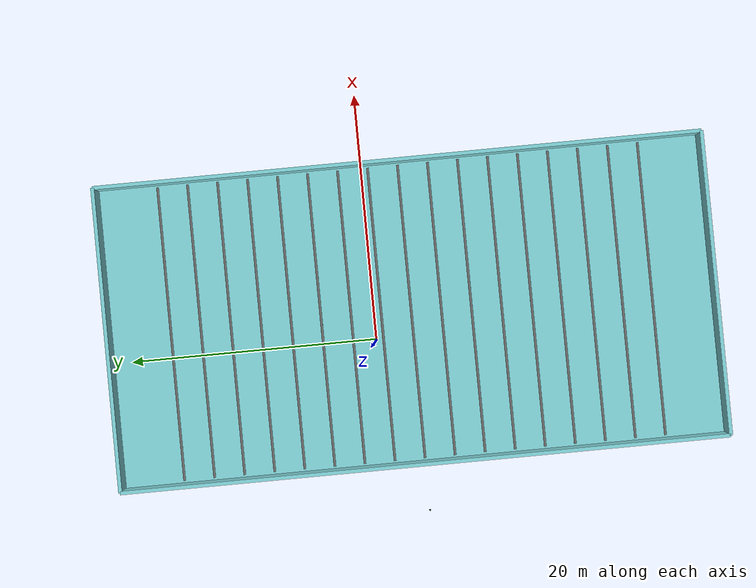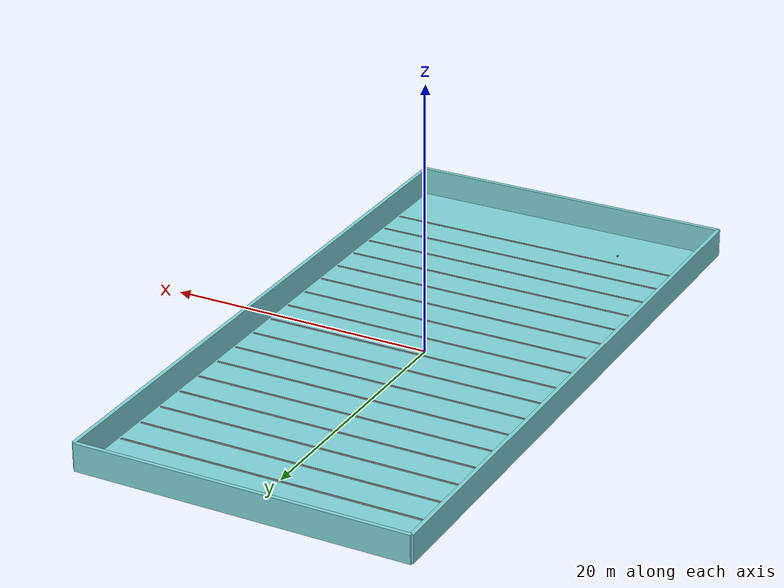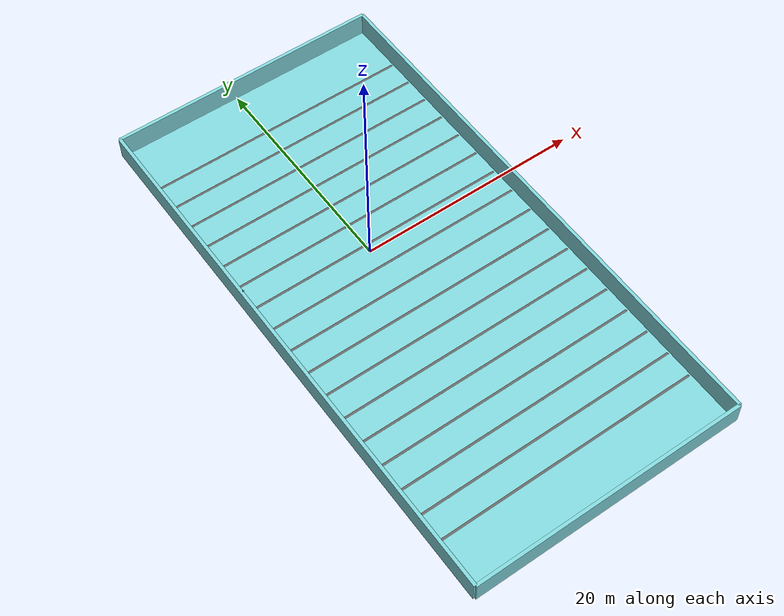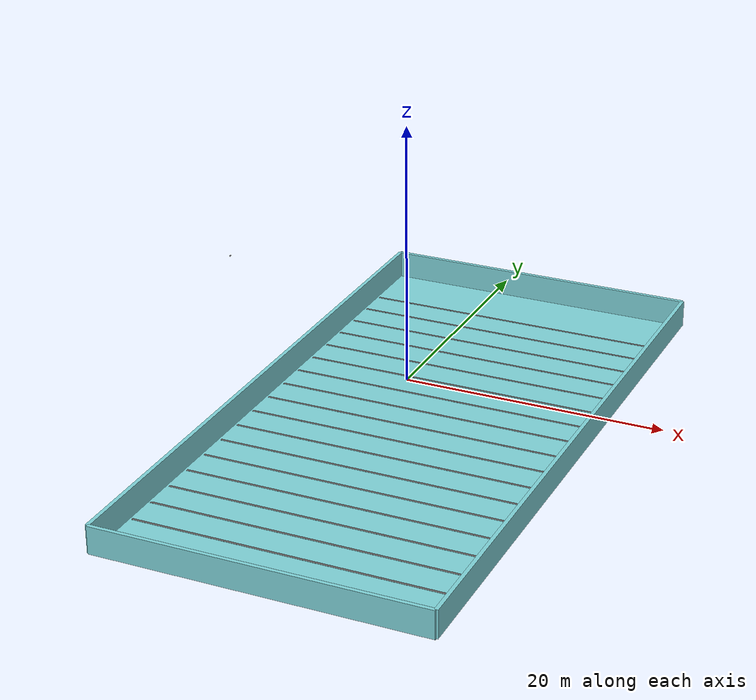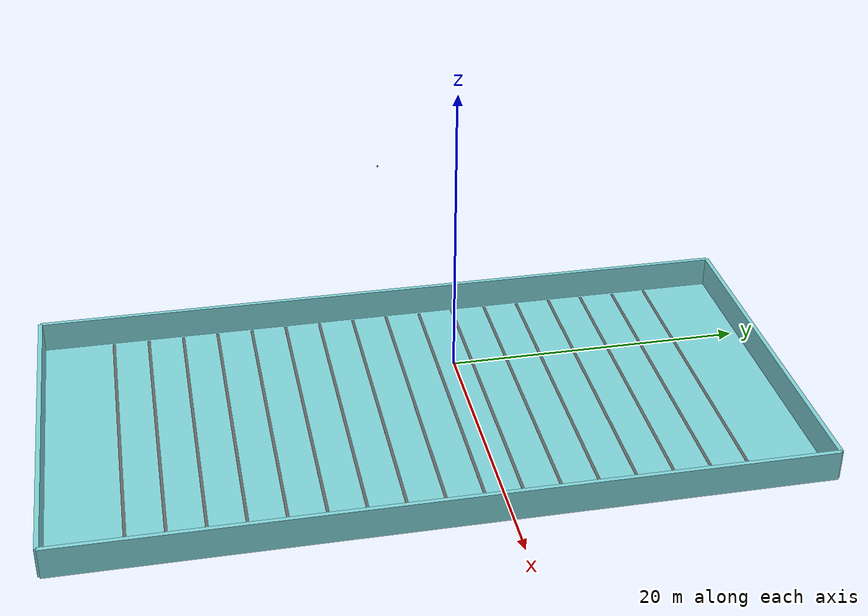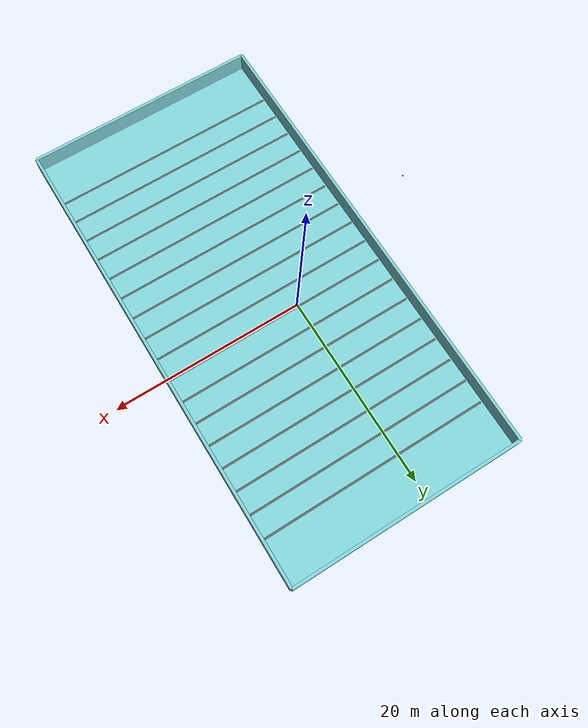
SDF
<sdf version="1.7">
 <world name="default">
  <plugin filename="gz-sim-air-pressure-system" name="gz::sim::systems::AirPressure"/>
  <plugin filename="gz-sim-imu-system" name="gz::sim::systems::Imu"/>
  <plugin filename="gz-sim-buoyancy-system" name="gz::sim::systems::Buoyancy">
   <graded_buoyancy>
    <default_density>1000</default_density>
    <density_change><above_depth>0</above_depth><density>1</density></density_change>
   </graded_buoyancy>
  </plugin>
  <plugin filename="gz-sim-physics-system" name="gz::sim::systems::Physics"/>
  <plugin filename="gz-sim-sensors-system" name="gz::sim::systems::Sensors">
   <render_engine>ogre2</render_engine>
  </plugin>
  <plugin filename="gz-sim-user-commands-system" name="gz::sim::systems::UserCommands"/>
  <plugin filename="gz-sim-scene-broadcaster-system" name="gz::sim::systems::SceneBroadcaster"/>
  <light name="sun" type="directional">
   <cast_shadows>0</cast_shadows>
   <pose>0 0 10 0 -0 0</pose>
   <diffuse>0.8 0.8 0.8 1</diffuse>
   <specular>0.2 0.2 0.2 1</specular>
   <attenuation>
    <range>1000</range>
    <constant>0.9</constant>
    <linear>0.01</linear>
    <quadratic>0.001</quadratic>
   </attenuation>
   <direction>-0.5 0.1 -0.9</direction>
   <spot><inner_angle>0</inner_angle><outer_angle>0</outer_angle><falloff>0</falloff></spot>
  </light>
  <light name="user_point_light_0" type="point">
   <pose>-6 -3.5 1 0 -0 0</pose>
   <diffuse>0.5 0.5 0.5 1</diffuse>
   <specular>0.1 0.1 0.1 1</specular>
   <attenuation>
    <range>20</range>
    <constant>0.5</constant>
    <linear>0.01</linear>
    <quadratic>0.001</quadratic>
   </attenuation>
   <cast_shadows>0</cast_shadows>
   <direction>0 0 -1</direction>
  </light>
  <gravity>0 0 -9.8</gravity>
  <magnetic_field>6e-06 2.3e-05 -4.2e-05</magnetic_field>
  <atmosphere type="adiabatic"/>
  <physics type="ode">
   <max_step_size>0.001</max_step_size>
   <real_time_factor>1</real_time_factor>
   <real_time_update_rate>1000</real_time_update_rate>
  </physics>
  <scene><ambient>0.4 0.4 0.4 1</ambient><background>0.7 0.7 0.7 1</background><shadows>1</shadows></scene>
  <spherical_coordinates>
   <surface_model>EARTH_WGS84</surface_model>
   <latitude_deg>0</latitude_deg>
   <longitude_deg>0</longitude_deg>
   <elevation>0</elevation>
   <heading_deg>0</heading_deg>
  </spherical_coordinates>
  <model name="pool_floor">
   <static>1</static>
   <pose>2 -3 0 0 0 0</pose>
   <link name="pool_floor_link">
    <collision name="pool_floor_collision">
     <geometry><box><size>25 50 0.1</size></box></geometry>
     <pose>0 0 -2.18 0 0 0</pose>
     <surface><friction><ode><mu>0.5</mu><mu2>0.5</mu2></ode></friction></surface>
    </collision>
    <visual name="pool_floor_visual">
     <geometry><box><size>25 50 0.1</size></box></geometry>
     <pose>0 0 -2.18 0 0 0</pose>
     <material>
      <ambient>0.5 0.83 0.85 1</ambient>
      <diffuse>0.5 0.83 0.85 1</diffuse>
      <specular>0.1 0.1 0.1 1</specular>
     </material>
    </visual>
   </link>
  </model>
  <model name="wall_north">
   <static>1</static>
   <pose>2 22 -1.065 0 0 0</pose>
   <link name="wall_north_link">
    <collision name="wall_north_collision">
     <geometry><box><size>25 0.3 2.13</size></box></geometry>
     <surface><friction><ode><mu>0.5</mu><mu2>0.5</mu2></ode></friction></surface>
    </collision>
    <visual name="wall_north_visual">
     <geometry><box><size>25 0.3 2.13</size></box></geometry>
     <material>
      <ambient>0.5 0.83 0.85 1</ambient>
      <diffuse>0.5 0.83 0.85 1</diffuse>
      <specular>0.1 0.1 0.1 1</specular>
     </material>
    </visual>
   </link>
  </model>
  <model name="wall_south">
   <static>1</static>
   <pose>2 -28 -1.065 0 0 0</pose>
   <link name="wall_south_link">
    <collision name="wall_south_collision">
     <geometry><box><size>25 0.3 2.13</size></box></geometry>
     <surface><friction><ode><mu>0.5</mu><mu2>0.5</mu2></ode></friction></surface>
    </collision>
    <visual name="wall_south_visual">
     <geometry><box><size>25 0.3 2.13</size></box></geometry>
     <material>
      <ambient>0.5 0.83 0.85 1</ambient>
      <diffuse>0.5 0.83 0.85 1</diffuse>
      <specular>0.1 0.1 0.1 1</specular>
     </material>
    </visual>
   </link>
  </model>
  <model name="wall_west">
   <static>1</static>
   <pose>-10.5 -3 -1.065 0 0 0</pose>
   <link name="wall_west_link">
    <collision name="wall_west_collision">
     <geometry><box><size>0.3 50 2.13</size></box></geometry>
     <surface><friction><ode><mu>0.5</mu><mu2>0.5</mu2></ode></friction></surface>
    </collision>
    <visual name="wall_west_visual">
     <geometry><box><size>0.3 50 2.13</size></box></geometry>
     <material>
      <ambient>0.5 0.83 0.85 1</ambient>
      <diffuse>0.5 0.83 0.85 1</diffuse>
      <specular>0.1 0.1 0.1 1</specular>
     </material>
    </visual>
   </link>
  </model>
  <model name="wall_east">
   <static>1</static>
   <pose>14.5 -3 -1.065 0 0 0</pose>
   <link name="wall_east_link">
    <collision name="wall_east_collision">
     <geometry><box><size>0.3 50 2.13</size></box></geometry>
     <surface><friction><ode><mu>0.5</mu><mu2>0.5</mu2></ode></friction></surface>
    </collision>
    <visual name="wall_east_visual">
     <geometry><box><size>0.3 50 2.13</size></box></geometry>
     <material>
      <ambient>0.5 0.83 0.85 1</ambient>
      <diffuse>0.5 0.83 0.85 1</diffuse>
      <specular>0.1 0.1 0.1 1</specular>
     </material>
    </visual>
   </link>
  </model>
  <model name="lane_marker_1">
   <static>1</static>
   <pose>2 7 -2.134 0 0 0</pose>
   <link name="lane_marker_1_link">
    <visual name="lane_marker_1_visual">
     <geometry><box><size>24.4 0.2 0.01</size></box></geometry>
     <material>
      <ambient>0.4 0.4 0.4 1</ambient>
      <diffuse>0.4 0.4 0.4 1</diffuse>
      <specular>0.1 0.1 0.1 1</specular>
     </material>
    </visual>
   </link>
  </model>
  <model name="lane_marker_2">
   <static>1</static>
   <pose>2 4.5 -2.134 0 0 0</pose>
   <link name="lane_marker_2_link">
    <visual name="lane_marker_2_visual">
     <geometry><box><size>24.4 0.2 0.01</size></box></geometry>
     <material>
      <ambient>0.4 0.4 0.4 1</ambient>
      <diffuse>0.4 0.4 0.4 1</diffuse>
      <specular>0.1 0.1 0.1 1</specular>
     </material>
    </visual>
   </link>
  </model>
  <model name="lane_marker_3">
   <static>1</static>
   <pose>2 2 -2.134 0 0 0</pose>
   <link name="lane_marker_3_link">
    <visual name="lane_marker_3_visual">
     <geometry><box><size>24.4 0.2 0.01</size></box></geometry>
     <material>
      <ambient>0.4 0.4 0.4 1</ambient>
      <diffuse>0.4 0.4 0.4 1</diffuse>
      <specular>0.1 0.1 0.1 1</specular>
     </material>
    </visual>
   </link>
  </model>
  <model name="lane_marker_4">
   <static>1</static>
   <pose>2 -0.5 -2.134 0 0 0</pose>
   <link name="lane_marker_4_link">
    <visual name="lane_marker_4_visual">
     <geometry><box><size>24.4 0.2 0.01</size></box></geometry>
     <material>
      <ambient>0.4 0.4 0.4 1</ambient>
      <diffuse>0.4 0.4 0.4 1</diffuse>
      <specular>0.1 0.1 0.1 1</specular>
     </material>
    </visual>
   </link>
  </model>
  <model name="lane_marker_5">
   <static>1</static>
   <pose>2 -3 -2.134 0 0 0</pose>
   <link name="lane_marker_5_link">
    <visual name="lane_marker_5_visual">
     <geometry><box><size>24.4 0.2 0.01</size></box></geometry>
     <material>
      <ambient>0.4 0.4 0.4 1</ambient>
      <diffuse>0.4 0.4 0.4 1</diffuse>
      <specular>0.1 0.1 0.1 1</specular>
     </material>
    </visual>
   </link>
  </model>
  <model name="lane_marker_6">
   <static>1</static>
   <pose>2 -5.5 -2.134 0 0 0</pose>
   <link name="lane_marker_6_link">
    <visual name="lane_marker_6_visual">
     <geometry><box><size>24.4 0.2 0.01</size></box></geometry>
     <material>
      <ambient>0.4 0.4 0.4 1</ambient>
      <diffuse>0.4 0.4 0.4 1</diffuse>
      <specular>0.1 0.1 0.1 1</specular>
     </material>
    </visual>
   </link>
  </model>
  <model name="lane_marker_7">
   <static>1</static>
   <pose>2 -8 -2.134 0 0 0</pose>
   <link name="lane_marker_7_link">
    <visual name="lane_marker_7_visual">
     <geometry><box><size>24.4 0.2 0.01</size></box></geometry>
     <material>
      <ambient>0.4 0.4 0.4 1</ambient>
      <diffuse>0.4 0.4 0.4 1</diffuse>
      <specular>0.1 0.1 0.1 1</specular>
     </material>
    </visual>
   </link>
  </model>
  <model name="lane_marker_8">
   <static>1</static>
   <pose>2 -10.5 -2.134 0 0 0</pose>
   <link name="lane_marker_8_link">
    <visual name="lane_marker_8_visual">
     <geometry><box><size>24.4 0.2 0.01</size></box></geometry>
     <material>
      <ambient>0.4 0.4 0.4 1</ambient>
      <diffuse>0.4 0.4 0.4 1</diffuse>
      <specular>0.1 0.1 0.1 1</specular>
     </material>
    </visual>
   </link>
  </model>
  <model name="lane_marker_9">
   <static>1</static>
   <pose>2 -13 -2.134 0 0 0</pose>
   <link name="lane_marker_9_link">
    <visual name="lane_marker_9_visual">
     <geometry><box><size>24.4 0.2 0.01</size></box></geometry>
     <material>
      <ambient>0.4 0.4 0.4 1</ambient>
      <diffuse>0.4 0.4 0.4 1</diffuse>
      <specular>0.1 0.1 0.1 1</specular>
     </material>
    </visual>
   </link>
  </model>
  <model name="lane_marker_10">
   <static>1</static>
   <pose>2 -15.5 -2.134 0 0 0</pose>
   <link name="lane_marker_10_link">
    <visual name="lane_marker_10_visual">
     <geometry><box><size>24.4 0.2 0.01</size></box></geometry>
     <material>
      <ambient>0.4 0.4 0.4 1</ambient>
      <diffuse>0.4 0.4 0.4 1</diffuse>
      <specular>0.1 0.1 0.1 1</specular>
     </material>
    </visual>
   </link>
  </model>
  <model name="lane_marker_11">
   <static>1</static>
   <pose>2 -18 -2.134 0 0 0</pose>
   <link name="lane_marker_11_link">
    <visual name="lane_marker_11_visual">
     <geometry><box><size>24.4 0.2 0.01</size></box></geometry>
     <material>
      <ambient>0.4 0.4 0.4 1</ambient>
      <diffuse>0.4 0.4 0.4 1</diffuse>
      <specular>0.1 0.1 0.1 1</specular>
     </material>
    </visual>
   </link>
  </model>
  <model name="lane_marker_12">
   <static>1</static>
   <pose>2 -20.5 -2.134 0 0 0</pose>
   <link name="lane_marker_12_link">
    <visual name="lane_marker_12_visual">
     <geometry><box><size>24.4 0.2 0.01</size></box></geometry>
     <material>
      <ambient>0.4 0.4 0.4 1</ambient>
      <diffuse>0.4 0.4 0.4 1</diffuse>
      <specular>0.1 0.1 0.1 1</specular>
     </material>
    </visual>
   </link>
  </model>
  <model name="lane_marker_13">
   <static>1</static>
   <pose>2 -23 -2.134 0 0 0</pose>
   <link name="lane_marker_13_link">
    <visual name="lane_marker_13_visual">
     <geometry><box><size>24.4 0.2 0.01</size></box></geometry>
     <material>
      <ambient>0.4 0.4 0.4 1</ambient>
      <diffuse>0.4 0.4 0.4 1</diffuse>
      <specular>0.1 0.1 0.1 1</specular>
     </material>
    </visual>
   </link>
  </model>
  <model name="lane_marker_14">
   <static>1</static>
   <pose>2 9.5 -2.134 0 0 0</pose>
   <link name="lane_marker_14_link">
    <visual name="lane_marker_14_visual">
     <geometry><box><size>24.4 0.2 0.01</size></box></geometry>
     <material>
      <ambient>0.4 0.4 0.4 1</ambient>
      <diffuse>0.4 0.4 0.4 1</diffuse>
      <specular>0.1 0.1 0.1 1</specular>
     </material>
    </visual>
   </link>
  </model>
  <model name="lane_marker_15">
   <static>1</static>
   <pose>2 12 -2.134 0 0 0</pose>
   <link name="lane_marker_15_link">
    <visual name="lane_marker_15_visual">
     <geometry><box><size>24.4 0.2 0.01</size></box></geometry>
     <material>
      <ambient>0.4 0.4 0.4 1</ambient>
      <diffuse>0.4 0.4 0.4 1</diffuse>
      <specular>0.1 0.1 0.1 1</specular>
     </material>
    </visual>
   </link>
  </model>
  <model name="lane_marker_16">
   <static>1</static>
   <pose>2 14.5 -2.134 0 0 0</pose>
   <link name="lane_marker_16_link">
    <visual name="lane_marker_16_visual">
     <geometry><box><size>24.4 0.2 0.01</size></box></geometry>
     <material>
      <ambient>0.4 0.4 0.4 1</ambient>
      <diffuse>0.4 0.4 0.4 1</diffuse>
      <specular>0.1 0.1 0.1 1</specular>
     </material>
    </visual>
   </link>
  </model>
  <model name="lane_marker_17">
   <static>1</static>
   <pose>2 17 -2.134 0 0 0</pose>
   <link name="lane_marker_17_link">
    <visual name="lane_marker_17_visual">
     <geometry><box><size>24.4 0.2 0.01</size></box></geometry>
     <material>
      <ambient>0.4 0.4 0.4 1</ambient>
      <diffuse>0.4 0.4 0.4 1</diffuse>
      <specular>0.1 0.1 0.1 1</specular>
     </material>
    </visual>
   </link>
  </model>
  <model name="pool_camera">
   <static>true</static>
   <pose>-13 -3 9 0 0.65 0</pose>
   <link name="pool_camera_link">
    <visual name="camera_visual">
     <geometry><box><size>0.1 0.1 0.1</size></box></geometry>
     <material><ambient>0.1 0.1 0.1 1</ambient><diffuse>0.1 0.1 0.1 1</diffuse></material>
    </visual>
    <sensor name="camera_sensor" type="camera">
     <update_rate>30.0</update_rate>
     <camera name="pool_camera">
      <horizontal_fov>1.36136</horizontal_fov>
      <image><width>640</width><height>480</height><format>B8G8R8</format></image>
      <clip><near>0.02</near><far>300</far></clip>
      <noise><type>gaussian</type><mean>0.0</mean><stddev>0.007</stddev></noise>
     </camera>
     <plugin name="camera_controller" filename="libgazebo_ros_camera.so">
      <alwaysOn>true</alwaysOn>
      <updateRate>30.0</updateRate>
      <cameraName>pool_camera</cameraName>
      <imageTopicName>image_raw</imageTopicName>
      <cameraInfoTopicName>camera_info</cameraInfoTopicName>
      <frameName>pool_camera_link</frameName>
      <hackBaseline>0.07</hackBaseline>
      <distortionK1>0.0</distortionK1>
      <distortionK2>0.0</distortionK2>
      <distortionK3>0.0</distortionK3>
      <distortionT1>0.0</distortionT1>
      <distortionT2>0.0</distortionT2>
     </plugin>
    </sensor>
   </link>
  </model>
 </world>
</sdf>
